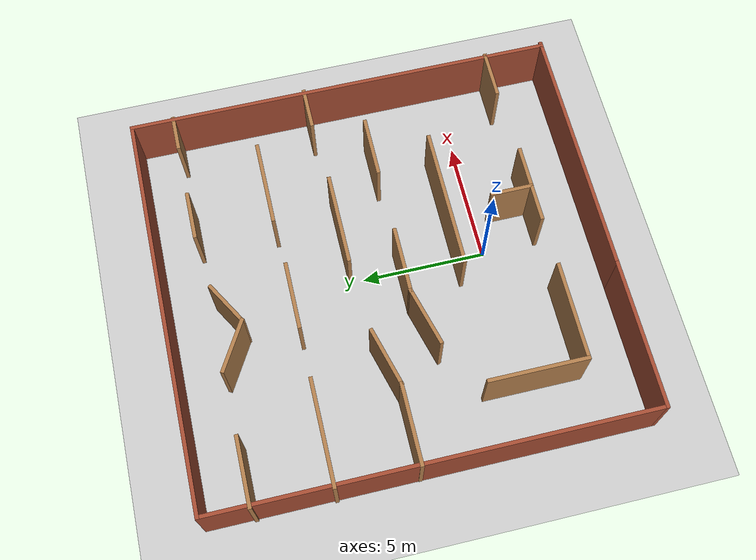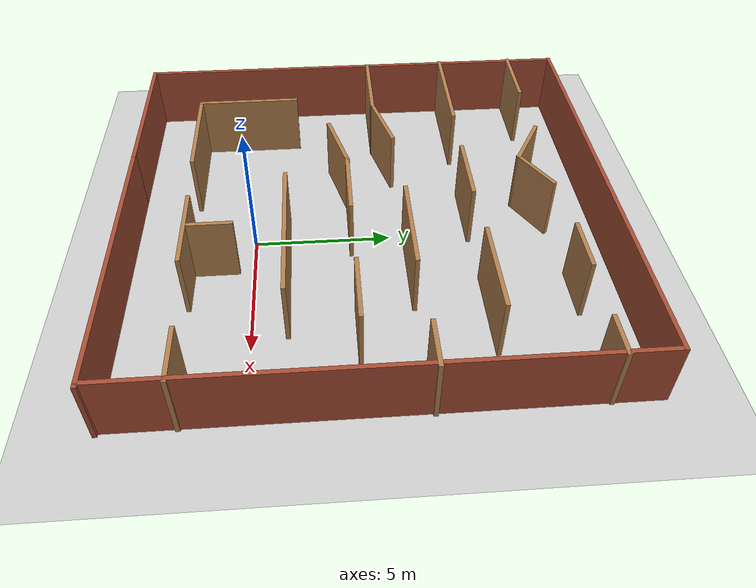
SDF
<sdf version="1.7">
 <world name="default">
  <light name="sun" type="directional">
   <pose>0 0 10 0 -0 0</pose>
   <diffuse>0.8 0.8 0.8 1</diffuse>
   <specular>0.2 0.2 0.2 1</specular>
   <attenuation>
    <range>1000</range>
    <constant>0.9</constant>
    <linear>0.01</linear>
    <quadratic>0.001</quadratic>
   </attenuation>
   <direction>-0.5 0.1 -0.9</direction>
   <spot><inner_angle>0</inner_angle><outer_angle>0</outer_angle><falloff>0</falloff></spot>
  </light>
  <model name="ground_plane">
   <static>1</static>
   <link name="link">
    <collision name="collision">
     <geometry><plane><normal>0 0 1</normal><size>100 100</size></plane></geometry>
     <surface><friction><ode><mu>100</mu><mu2>50</mu2></ode></friction></surface>
    </collision>
    <visual name="visual">
     <cast_shadows>0</cast_shadows>
     <geometry><plane><normal>0 0 1</normal><size>100 100</size></plane></geometry>
     <material>
      <script><uri>file://media/materials/scripts/gazebo.material</uri><name>Gazebo/Grey</name></script>
     </material>
    </visual>
   </link>
  </model>
  <gravity>0 0 -9.8</gravity>
  <magnetic_field>6e-06 2.3e-05 -4.2e-05</magnetic_field>
  <atmosphere type="adiabatic"/>
  <physics type="ode">
   <max_step_size>0.001</max_step_size>
   <real_time_factor>1</real_time_factor>
   <real_time_update_rate>1000</real_time_update_rate>
  </physics>
  <scene><ambient>0.4 0.4 0.4 1</ambient><background>0.7 0.7 0.7 1</background><shadows>1</shadows></scene>
  <audio><device>default</device></audio>
  <spherical_coordinates>
   <surface_model>EARTH_WGS84</surface_model>
   <latitude_deg>0</latitude_deg>
   <longitude_deg>0</longitude_deg>
   <elevation>0</elevation>
   <heading_deg>0</heading_deg>
  </spherical_coordinates>
  <model name="warehouse">
   <pose>-0.327311 4.195 0 0 -0 0</pose>
   <link name="Wall_16">
    <collision name="Wall_16_Collision">
     <geometry><box><size>16.25 0.15 2.5</size></box></geometry>
     <pose>0 0 1.25 0 -0 0</pose>
    </collision>
    <visual name="Wall_16_Visual">
     <pose>0 0 1.25 0 -0 0</pose>
     <geometry><box><size>16.25 0.15 2.5</size></box></geometry>
     <material>
      <script><uri>file://media/materials/scripts/gazebo.material</uri><name>Gazebo/Bricks</name></script>
      <ambient>1 1 1 1</ambient>
     </material>
     <meta><layer>0</layer></meta>
    </visual>
    <pose>-0.012689 8.675 0 0 -0 0</pose>
   </link>
   <link name="Wall_17">
    <collision name="Wall_17_Collision">
     <geometry><box><size>17.5 0.15 2.5</size></box></geometry>
     <pose>0 0 1.25 0 -0 0</pose>
    </collision>
    <visual name="Wall_17_Visual">
     <pose>0 0 1.25 0 -0 0</pose>
     <geometry><box><size>17.5 0.15 2.5</size></box></geometry>
     <material>
      <script><uri>file://media/materials/scripts/gazebo.material</uri><name>Gazebo/Bricks</name></script>
      <ambient>1 1 1 1</ambient>
     </material>
     <meta><layer>0</layer></meta>
    </visual>
    <pose>8.03731 -0 0 0 -0 -1.5708</pose>
   </link>
   <link name="Wall_2">
    <collision name="Wall_2_Collision">
     <geometry><box><size>10.5 0.15 2.5</size></box></geometry>
     <pose>0 0 1.25 0 -0 0</pose>
    </collision>
    <visual name="Wall_2_Visual">
     <pose>0 0 1.25 0 -0 0</pose>
     <geometry><box><size>10.5 0.15 2.5</size></box></geometry>
     <material>
      <script><uri>file://media/materials/scripts/gazebo.material</uri><name>Gazebo/Bricks</name></script>
      <ambient>1 1 1 1</ambient>
     </material>
     <meta><layer>0</layer></meta>
    </visual>
    <pose>2.96231 -8.675 0 0 -0 0</pose>
   </link>
   <link name="Wall_31">
    <collision name="Wall_31_Collision">
     <geometry><box><size>2.75 0.15 2.5</size></box></geometry>
     <pose>0 0 1.25 0 -0 0</pose>
    </collision>
    <visual name="Wall_31_Visual">
     <pose>0 0 1.25 0 -0 0</pose>
     <geometry><box><size>2.75 0.15 2.5</size></box></geometry>
     <material>
      <script><uri>file://media/materials/scripts/gazebo.material</uri><name>Gazebo/Wood</name></script>
      <ambient>1 1 1 1</ambient>
     </material>
     <meta><layer>0</layer></meta>
    </visual>
    <pose>-6.83731 6.81729 0 0 -0 0</pose>
   </link>
   <link name="Wall_33">
    <collision name="Wall_33_Collision">
     <geometry><box><size>2.25 0.15 2.5</size></box></geometry>
     <pose>0 0 1.25 0 -0 0</pose>
    </collision>
    <visual name="Wall_33_Visual">
     <pose>0 0 1.25 0 -0 0</pose>
     <geometry><box><size>2.25 0.15 2.5</size></box></geometry>
     <material>
      <script><uri>file://media/materials/scripts/gazebo.material</uri><name>Gazebo/Wood</name></script>
      <ambient>1 1 1 1</ambient>
     </material>
     <meta><layer>0</layer></meta>
    </visual>
    <pose>-2.09174 6.34579 0 0 -0 -0.523599</pose>
   </link>
   <link name="Wall_34">
    <collision name="Wall_34_Collision">
     <geometry><box><size>2 0.15 2.5</size></box></geometry>
     <pose>0 0 1.25 0 -0 0</pose>
    </collision>
    <visual name="Wall_34_Visual">
     <pose>0 0 1.25 0 -0 0</pose>
     <geometry><box><size>2 0.15 2.5</size></box></geometry>
     <material>
      <script><uri>file://media/materials/scripts/gazebo.material</uri><name>Gazebo/Wood</name></script>
      <ambient>1 1 1 1</ambient>
     </material>
     <meta><layer>0</layer></meta>
    </visual>
    <pose>-0.381344 6.28329 0 0 -0 0.523599</pose>
   </link>
   <link name="Wall_36">
    <collision name="Wall_36_Collision">
     <geometry><box><size>2 0.15 2.5</size></box></geometry>
     <pose>0 0 1.25 0 -0 0</pose>
    </collision>
    <visual name="Wall_36_Visual">
     <pose>0 0 1.25 0 -0 0</pose>
     <geometry><box><size>2 0.15 2.5</size></box></geometry>
     <material>
      <script><uri>file://media/materials/scripts/gazebo.material</uri><name>Gazebo/Wood</name></script>
      <ambient>1 1 1 1</ambient>
     </material>
     <meta><layer>0</layer></meta>
    </visual>
    <pose>3.59519 6.9778 0 0 -0 0</pose>
   </link>
   <link name="Wall_38">
    <collision name="Wall_38_Collision">
     <geometry><box><size>1.5 0.15 2.5</size></box></geometry>
     <pose>0 0 1.25 0 -0 0</pose>
    </collision>
    <visual name="Wall_38_Visual">
     <pose>0 0 1.25 0 -0 0</pose>
     <geometry><box><size>1.5 0.15 2.5</size></box></geometry>
     <material>
      <script><uri>file://media/materials/scripts/gazebo.material</uri><name>Gazebo/Wood</name></script>
      <ambient>1 1 1 1</ambient>
     </material>
     <meta><layer>0</layer></meta>
    </visual>
    <pose>7.41139 6.9778 0 0 -0 0</pose>
   </link>
   <link name="Wall_4">
    <collision name="Wall_4_Collision">
     <geometry><box><size>6 0.15 2.5</size></box></geometry>
     <pose>0 0 1.25 0 -0 0</pose>
    </collision>
    <visual name="Wall_4_Visual">
     <pose>0 0 1.25 0 -0 0</pose>
     <geometry><box><size>6 0.15 2.5</size></box></geometry>
     <material>
      <script><uri>file://media/materials/scripts/gazebo.material</uri><name>Gazebo/Bricks</name></script>
      <ambient>1 1 1 1</ambient>
     </material>
     <meta><layer>0</layer></meta>
    </visual>
    <pose>-5.13769 -8.675 0 0 -0 3.14159</pose>
   </link>
   <link name="Wall_40">
    <collision name="Wall_40_Collision">
     <geometry><box><size>4.25 0.15 2.5</size></box></geometry>
     <pose>0 0 1.25 0 -0 0</pose>
    </collision>
    <visual name="Wall_40_Visual">
     <pose>0 0 1.25 0 -0 0</pose>
     <geometry><box><size>4.25 0.15 2.5</size></box></geometry>
     <material>
      <script><uri>file://media/materials/scripts/gazebo.material</uri><name>Gazebo/Wood</name></script>
      <ambient>1 1 1 1</ambient>
     </material>
     <meta><layer>0</layer></meta>
    </visual>
    <pose>-6.08731 3.76764 0 0 -0 0</pose>
   </link>
   <link name="Wall_42">
    <collision name="Wall_42_Collision">
     <geometry><box><size>2.75 0.15 2.5</size></box></geometry>
     <pose>0 0 1.25 0 -0 0</pose>
    </collision>
    <visual name="Wall_42_Visual">
     <pose>0 0 1.25 0 -0 0</pose>
     <geometry><box><size>2.75 0.15 2.5</size></box></geometry>
     <material>
      <script><uri>file://media/materials/scripts/gazebo.material</uri><name>Gazebo/Wood</name></script>
      <ambient>1 1 1 1</ambient>
     </material>
     <meta><layer>0</layer></meta>
    </visual>
    <pose>-0.631021 3.76764 0 0 -0 0</pose>
   </link>
   <link name="Wall_44">
    <collision name="Wall_44_Collision">
     <geometry><box><size>3.5 0.15 2.5</size></box></geometry>
     <pose>0 0 1.25 0 -0 0</pose>
    </collision>
    <visual name="Wall_44_Visual">
     <pose>0 0 1.25 0 -0 0</pose>
     <geometry><box><size>3.5 0.15 2.5</size></box></geometry>
     <material>
      <script><uri>file://media/materials/scripts/gazebo.material</uri><name>Gazebo/Wood</name></script>
      <ambient>1 1 1 1</ambient>
     </material>
     <meta><layer>0</layer></meta>
    </visual>
    <pose>4.34519 3.87465 0 0 -0 0</pose>
   </link>
   <link name="Wall_46">
    <collision name="Wall_46_Collision">
     <geometry><box><size>3.25 0.15 2.5</size></box></geometry>
     <pose>0 0 1.25 0 -0 0</pose>
    </collision>
    <visual name="Wall_46_Visual">
     <pose>0 0 1.25 0 -0 0</pose>
     <geometry><box><size>3.25 0.15 2.5</size></box></geometry>
     <material>
      <script><uri>file://media/materials/scripts/gazebo.material</uri><name>Gazebo/Wood</name></script>
      <ambient>1 1 1 1</ambient>
     </material>
     <meta><layer>0</layer></meta>
    </visual>
    <pose>-6.53381 0.557494 0 0 -0 0</pose>
   </link>
   <link name="Wall_47">
    <collision name="Wall_47_Collision">
     <geometry><box><size>2.5 0.15 2.5</size></box></geometry>
     <pose>0 0 1.25 0 -0 0</pose>
    </collision>
    <visual name="Wall_47_Visual">
     <pose>0 0 1.25 0 -0 0</pose>
     <geometry><box><size>2.5 0.15 2.5</size></box></geometry>
     <material>
      <script><uri>file://media/materials/scripts/gazebo.material</uri><name>Gazebo/Wood</name></script>
      <ambient>1 1 1 1</ambient>
     </material>
     <meta><layer>0</layer></meta>
    </visual>
    <pose>-3.84884 0.861607 0 0 -0 0.261799</pose>
   </link>
   <link name="Wall_49">
    <collision name="Wall_49_Collision">
     <geometry><box><size>2.5 0.15 2.5</size></box></geometry>
     <pose>0 0 1.25 0 -0 0</pose>
    </collision>
    <visual name="Wall_49_Visual">
     <pose>0 0 1.25 0 -0 0</pose>
     <geometry><box><size>2.5 0.15 2.5</size></box></geometry>
     <material>
      <script><uri>file://media/materials/scripts/gazebo.material</uri><name>Gazebo/Wood</name></script>
      <ambient>1 1 1 1</ambient>
     </material>
     <meta><layer>0</layer></meta>
    </visual>
    <pose>-2.61514 -0.957478 0 0 -0 0.261799</pose>
   </link>
   <link name="Wall_5">
    <collision name="Wall_5_Collision">
     <geometry><box><size>17.5 0.15 2.5</size></box></geometry>
     <pose>0 0 1.25 0 -0 0</pose>
    </collision>
    <visual name="Wall_5_Visual">
     <pose>0 0 1.25 0 -0 0</pose>
     <geometry><box><size>17.5 0.15 2.5</size></box></geometry>
     <material>
      <script><uri>file://media/materials/scripts/gazebo.material</uri><name>Gazebo/Bricks</name></script>
      <ambient>1 1 1 1</ambient>
     </material>
     <meta><layer>0</layer></meta>
    </visual>
    <pose>-8.06269 -0 0 0 -0 1.5708</pose>
   </link>
   <link name="Wall_50">
    <collision name="Wall_50_Collision">
     <geometry><box><size>2.75 0.15 2.5</size></box></geometry>
     <pose>0 0 1.25 0 -0 0</pose>
    </collision>
    <visual name="Wall_50_Visual">
     <pose>0 0 1.25 0 -0 0</pose>
     <geometry><box><size>2.75 0.15 2.5</size></box></geometry>
     <material>
      <script><uri>file://media/materials/scripts/gazebo.material</uri><name>Gazebo/Wood</name></script>
      <ambient>1 1 1 1</ambient>
     </material>
     <meta><layer>0</layer></meta>
    </visual>
    <pose>-0.18018 -0.653366 0 0 -0 0</pose>
   </link>
   <link name="Wall_52">
    <collision name="Wall_52_Collision">
     <geometry><box><size>3.75 0.15 2.5</size></box></geometry>
     <pose>0 0 1.25 0 -0 0</pose>
    </collision>
    <visual name="Wall_52_Visual">
     <pose>0 0 1.25 0 -0 0</pose>
     <geometry><box><size>3.75 0.15 2.5</size></box></geometry>
     <material>
      <script><uri>file://media/materials/scripts/gazebo.material</uri><name>Gazebo/Wood</name></script>
      <ambient>1 1 1 1</ambient>
     </material>
     <meta><layer>0</layer></meta>
    </visual>
    <pose>2.11608 1.36003 0 0 -0 0</pose>
   </link>
   <link name="Wall_54">
    <collision name="Wall_54_Collision">
     <geometry><box><size>1.75 0.15 2.5</size></box></geometry>
     <pose>0 0 1.25 0 -0 0</pose>
    </collision>
    <visual name="Wall_54_Visual">
     <pose>0 0 1.25 0 -0 0</pose>
     <geometry><box><size>1.75 0.15 2.5</size></box></geometry>
     <material>
      <script><uri>file://media/materials/scripts/gazebo.material</uri><name>Gazebo/Wood</name></script>
      <ambient>1 1 1 1</ambient>
     </material>
     <meta><layer>0</layer></meta>
    </visual>
    <pose>7.32237 1.52054 0 0 -0 0</pose>
   </link>
   <link name="Wall_56">
    <collision name="Wall_56_Collision">
     <geometry><box><size>2.5 0.15 2.5</size></box></geometry>
     <pose>0 0 1.25 0 -0 0</pose>
    </collision>
    <visual name="Wall_56_Visual">
     <pose>0 0 1.25 0 -0 0</pose>
     <geometry><box><size>2.5 0.15 2.5</size></box></geometry>
     <material>
      <script><uri>file://media/materials/scripts/gazebo.material</uri><name>Gazebo/Wood</name></script>
      <ambient>1 1 1 1</ambient>
     </material>
     <meta><layer>0</layer></meta>
    </visual>
    <pose>4.96875 -0.61956 0 0 -0 0</pose>
   </link>
   <link name="Wall_58">
    <collision name="Wall_58_Collision">
     <geometry><box><size>4 0.15 2.5</size></box></geometry>
     <pose>0 0 1.25 0 -0 0</pose>
    </collision>
    <visual name="Wall_58_Visual">
     <pose>0 0 1.25 0 -0 0</pose>
     <geometry><box><size>4 0.15 2.5</size></box></geometry>
     <material>
      <script><uri>file://media/materials/scripts/gazebo.material</uri><name>Gazebo/Wood</name></script>
      <ambient>1 1 1 1</ambient>
     </material>
     <meta><layer>0</layer></meta>
    </visual>
    <pose>-5.62269 -4.52415 0 0 -0 -1.5708</pose>
   </link>
   <link name="Wall_59">
    <collision name="Wall_59_Collision">
     <geometry><box><size>4 0.15 2.5</size></box></geometry>
     <pose>0 0 1.25 0 -0 0</pose>
    </collision>
    <visual name="Wall_59_Visual">
     <pose>0 0 1.25 0 -0 0</pose>
     <geometry><box><size>4 0.15 2.5</size></box></geometry>
     <material>
      <script><uri>file://media/materials/scripts/gazebo.material</uri><name>Gazebo/Wood</name></script>
      <ambient>1 1 1 1</ambient>
     </material>
     <meta><layer>0</layer></meta>
    </visual>
    <pose>-3.69769 -6.44915 0 0 -0 0</pose>
   </link>
   <link name="Wall_61">
    <collision name="Wall_61_Collision">
     <geometry><box><size>5.75 0.15 2.5</size></box></geometry>
     <pose>0 0 1.25 0 -0 0</pose>
    </collision>
    <visual name="Wall_61_Visual">
     <pose>0 0 1.25 0 -0 0</pose>
     <geometry><box><size>5.75 0.15 2.5</size></box></geometry>
     <material>
      <script><uri>file://media/materials/scripts/gazebo.material</uri><name>Gazebo/Wood</name></script>
      <ambient>1 1 1 1</ambient>
     </material>
     <meta><layer>0</layer></meta>
    </visual>
    <pose>2.04603 -2.97367 0 0 -0 0</pose>
   </link>
   <link name="Wall_63">
    <collision name="Wall_63_Collision">
     <geometry><box><size>3.25 0.15 2.5</size></box></geometry>
     <pose>0 0 1.25 0 -0 0</pose>
    </collision>
    <visual name="Wall_63_Visual">
     <pose>0 0 1.25 0 -0 0</pose>
     <geometry><box><size>3.25 0.15 2.5</size></box></geometry>
     <material>
      <script><uri>file://media/materials/scripts/gazebo.material</uri><name>Gazebo/Wood</name></script>
      <ambient>1 1 1 1</ambient>
     </material>
     <meta><layer>0</layer></meta>
    </visual>
    <pose>1.86608 -6.39783 0 0 -0 0</pose>
   </link>
   <link name="Wall_65">
    <collision name="Wall_65_Collision">
     <geometry><box><size>1.75 0.15 2.5</size></box></geometry>
     <pose>0 0 1.25 0 -0 0</pose>
    </collision>
    <visual name="Wall_65_Visual">
     <pose>0 0 1.25 0 -0 0</pose>
     <geometry><box><size>1.75 0.15 2.5</size></box></geometry>
     <material>
      <script><uri>file://media/materials/scripts/gazebo.material</uri><name>Gazebo/Wood</name></script>
      <ambient>1 1 1 1</ambient>
     </material>
     <meta><layer>0</layer></meta>
    </visual>
    <pose>1.76065 -5.59276 0 0 -0 -1.5708</pose>
   </link>
   <link name="Wall_67">
    <collision name="Wall_67_Collision">
     <geometry><box><size>2 0.15 2.5</size></box></geometry>
     <pose>0 0 1.25 0 -0 0</pose>
    </collision>
    <visual name="Wall_67_Visual">
     <pose>0 0 1.25 0 -0 0</pose>
     <geometry><box><size>2 0.15 2.5</size></box></geometry>
     <material>
      <script><uri>file://media/materials/scripts/gazebo.material</uri><name>Gazebo/Wood</name></script>
      <ambient>1 1 1 1</ambient>
     </material>
     <meta><layer>0</layer></meta>
    </visual>
    <pose>7.17986 -6.23732 0 0 -0 0</pose>
   </link>
   <static>1</static>
  </model>
 </world>
</sdf>
